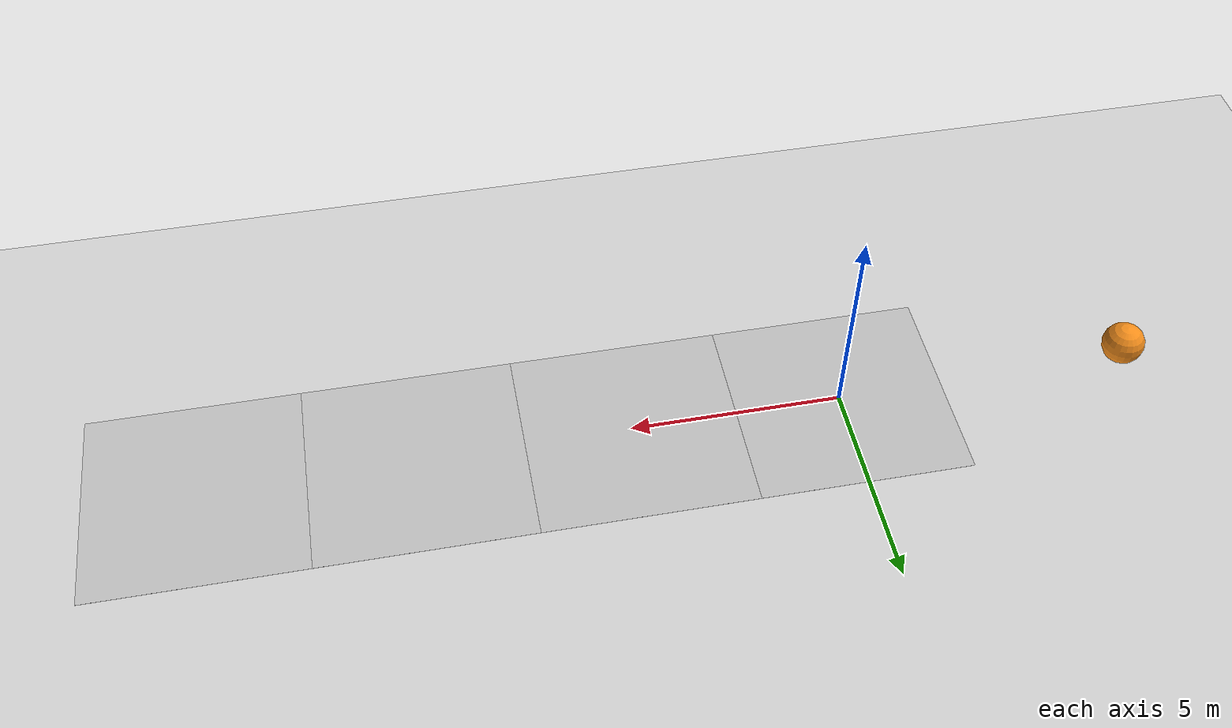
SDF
<sdf version="1.5">
 <world name="mentor2_tow">
  <scene><grid>false</grid></scene>
  <include><uri>model://sun</uri></include>
  <include><uri>model://ground_plane</uri></include>
  <model name="sphere">
   <pose>-7 0 0.5 0 0 0</pose>
   <link name="link">
    <collision name="collision"><geometry><sphere><radius>0.5</radius></sphere></geometry></collision>
    <visual name="visual">
     <geometry><sphere><radius>0.5</radius></sphere></geometry>
     <material>
      <script><uri>file://media/materials/scripts/gazebo.material</uri><name>Gazebo/Orange</name></script>
     </material>
    </visual>
   </link>
  </model>
  <include><uri>model://concrete_slab</uri></include>
  <include><pose>5 0 0 0 0 0</pose><uri>model://concrete_slab</uri></include>
  <include><pose>10 0 0 0 0 0</pose><uri>model://concrete_slab</uri></include>
  <include><pose>15 0 0 0 0 0</pose><uri>model://concrete_slab</uri></include>
  <plugin name="SimEvents" filename="libSimEventsPlugin.so">
   <region><name>slab_0</name><volume><min>0 -5  0</min><max>5 5 10</max></volume></region>
   <region><name>slab_1</name><volume><min>5 -5  0</min><max>10 5 10</max></volume></region>
   <region><name>slab_2</name><volume><min>10 -5  0</min><max>15 5 10</max></volume></region>
   <region><name>slab_3</name><volume><min>15 -5  0</min><max>20 5 10</max></volume></region>
   <event><name>state</name><type>sim_state</type></event>
   <event><name>on_slab_0</name><type>inclusion</type><model>Car</model><region>slab_0</region></event>
   <event><name>on_slab_1</name><type>inclusion</type><model>Car</model><region>slab_1</region></event>
   <event><name>on_slab_2</name><type>inclusion</type><model>Car</model><region>slab_2</region></event>
   <event><name>on_slab_3</name><type>inclusion</type><model>Car</model><region>slab_3</region></event>
  </plugin>
 </world>
</sdf>

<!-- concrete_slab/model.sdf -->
<sdf version="1.5">
  <model name="Concrete slab">
    <static>true</static>

    <link name="slab">
      <pose>0 0 0.01 0 0 0</pose>
      <collision name="collision">
        <geometry>
          <plane>
            <normal>0 0 1</normal>
            <size>5.0 5.0</size>
          </plane>
        </geometry>
        <surface>
          <friction>
            <ode>
              <mu>100</mu>
              <mu2>50</mu2>
            </ode>
          </friction>
        </surface>
      </collision>

      <visual name="concrete">
        <cast_shadows>false</cast_shadows>
        <geometry>
          <plane>
            <normal>0 0 1</normal>
            <size>5.0 5.0</size>
          </plane>
        </geometry>
        <material>
          <script>
            <uri>model://concrete_slab/materials/scripts/</uri>
            <uri>model://concrete_slab/materials/textures/</uri>
            <name>Mentor2/ConcreteSlab</name>
          </script>
        </material>
      </visual>
    </link>
  </model>
</sdf>
